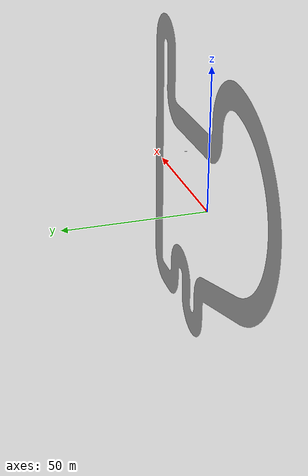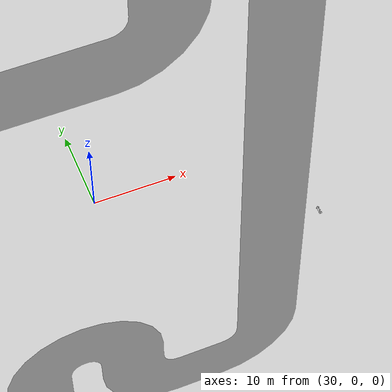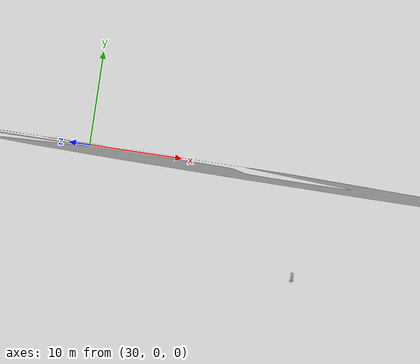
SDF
<?xml version="1.0" ?>
<sdf version="1.5">
  <world name="default">
    <gui fullscreen='1'>
      <camera name='user_camera'>
        <pose >54.53 -6.12 1.35 0 0.31 -1.92</pose>
        <view_controller>orbit</view_controller>
        <projection_type>perspective</projection_type>
      </camera>
    </gui>
    <scene>
      <grid>false</grid>
      <sky>
        <clouds>
          <speed>12</speed>
        </clouds>
      </sky>
    </scene>
    <!-- A global light source -->
    <include>
      <uri>model://sun</uri>
      <name>sun_1</name>
      <pose>0 0 1 0 0 0</pose>
    </include>
    <include>
	    <uri>model://simple_circuit</uri>
	    <pose>0 0 0 0 0 0</pose>
    </include>
    <include>
      <uri>model://f1_renault</uri>
      <pose>53.462 -10.734 0.004 0 0 -1.57</pose>
    </include>
  </world>
</sdf>

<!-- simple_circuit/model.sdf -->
<sdf version="1.3">
    <model name="simple_circuit">
        <static>true</static>
        <link name="simple_circuit">
            <pose>0 0 0 0 0 0</pose>
            <collision name="collision">
                <geometry>
                    <plane>
                        <normal>0 0 1</normal>
                        <size>1000 1000</size>
                    </plane>
                </geometry>
            </collision>
            <visual name="visual">
                <pose>0 0 0 0 0 0</pose>
                <geometry>
                    <mesh>
                        <uri>model://simple_circuit/meshes/simple_line.dae</uri>
                    </mesh>
                </geometry>
            </visual>
        </link>
        <link name="pared">
            <pose>0 0 0 0 0 0</pose>
            <collision name="collision">
                <geometry>
                    <mesh>
                        <uri>model://simple_circuit/meshes/pared.stl</uri>
                    </mesh>
                </geometry>
            </collision>
        </link>
    </model>
</sdf>

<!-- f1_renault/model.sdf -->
<sdf version="1.4">
<model name="f1_renault">
  <pose>0 0 0 0 0 0</pose>
  <static>false</static>
    <link name="f1">
    	<pose>0 0 0 0 0 0</pose>
	<inertial>
        <mass>10</mass>
        <inertia>
          <ixx>1</ixx>
          <ixy>0.0</ixy>
          <iyy>1</iyy>
          <ixz>0.0</ixz>
          <iyz>0.0</iyz>
          <izz>1.0</izz>
      </inertia>
    </inertial>
    <collision name="collision">
        <geometry>
            <mesh>
                 <uri>model://f1_renault/Renault/Car.obj</uri>
                 <scale>0.2 0.2 0.2</scale>
            </mesh>
        </geometry>
    </collision>
    <visual name="visual">
        <geometry>
          <mesh>
            <uri>model://f1_renault/Renault/Car.obj</uri>
            <scale>0.2 0.2 0.2</scale>
        </mesh>
      </geometry>
    </visual>
    <visual name='left_cam'>
      <pose>0.45000 0.040000 0.1000000 0.000000 -0.000000 0.0000000</pose>
      <geometry>
        <sphere>
          <radius>.005</radius>
        </sphere>
      </geometry>
    </visual>
    <sensor name='cam_f1_left' type='camera'>
      <pose>0.45000 0.040000 0.1000000 0.000000 -0.000000 0.0000000</pose>
      <update_rate>20.000000</update_rate>
      <camera name='cleft'>
        <horizontal_fov>1.570000</horizontal_fov>
        <image>
          <width>640</width>
          <height>480</height>
          <format>R8G8B8</format>
        </image>
        <clip>
          <near>0.100000</near>
          <far>15.000000</far>
        </clip>
      </camera>
      <plugin name="camera_controller_left" filename="libgazebo_ros_camera.so">
        <alwaysOn>true</alwaysOn>
        <updateRate>0.0</updateRate>
        <cameraName>F1ROS/cameraL</cameraName>
        <imageTopicName>image_raw</imageTopicName>
        <cameraInfoTopicName>camera_info</cameraInfoTopicName>
        <frameName>camera_top_body_left</frameName>
        <hackBaseline>0.07</hackBaseline>
        <distortionK1>0.0</distortionK1>
        <distortionK2>0.0</distortionK2>
        <distortionK3>0.0</distortionK3>
        <distortionT1>0.0</distortionT1>
        <distortionT2>0.0</distortionT2>
      </plugin>
    </sensor>
  </link>

  <plugin name="object_controller" filename="libgazebo_ros_planar_move.so">
      <commandTopic>F1ROS/cmd_vel</commandTopic>
      <odometryTopic>F1ROS/odom</odometryTopic>
      <odometryFrame>odom</odometryFrame>
      <odometryRate>20.0</odometryRate>
      <robotBaseFrame>xf1</robotBaseFrame>
  </plugin>
</model>
</sdf>
